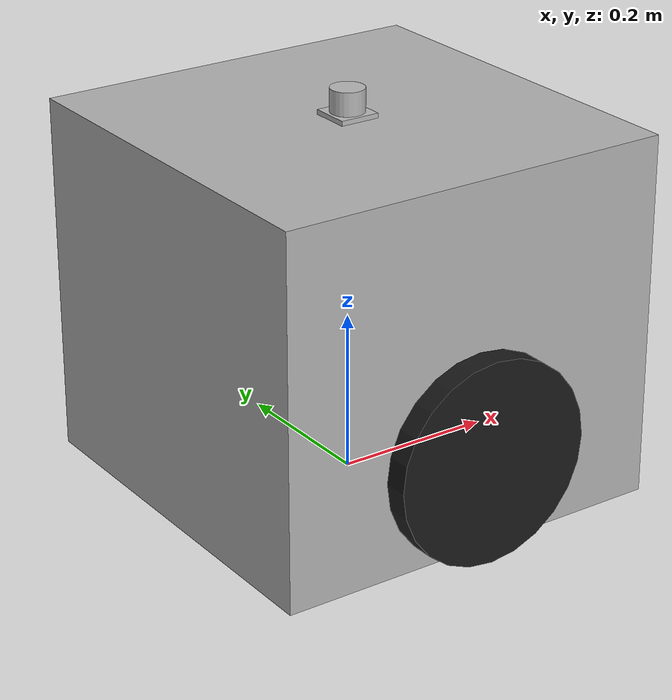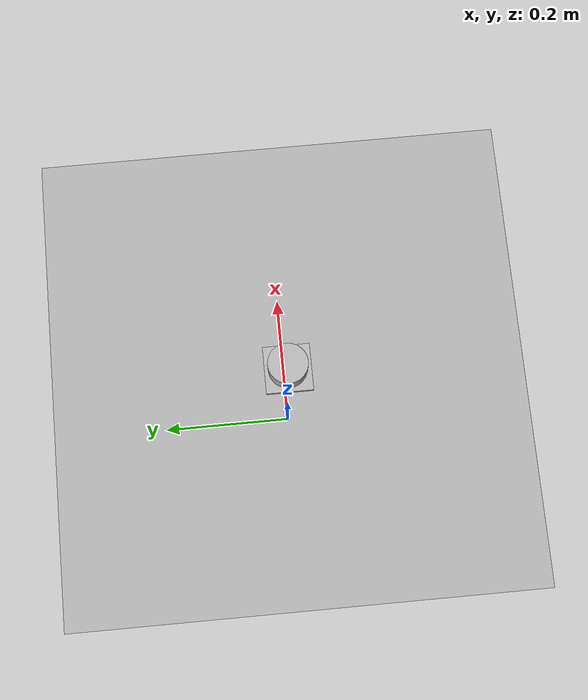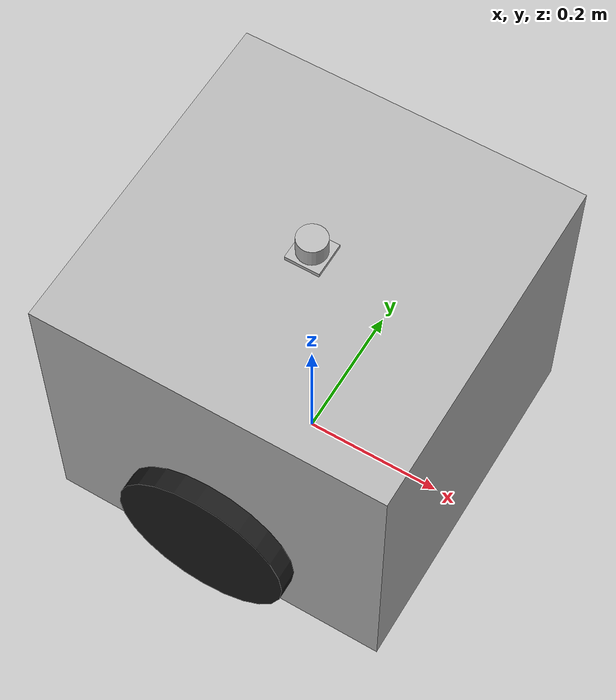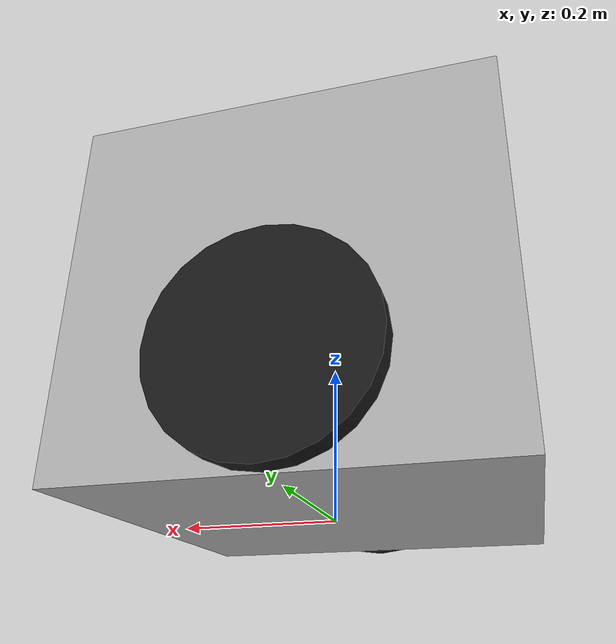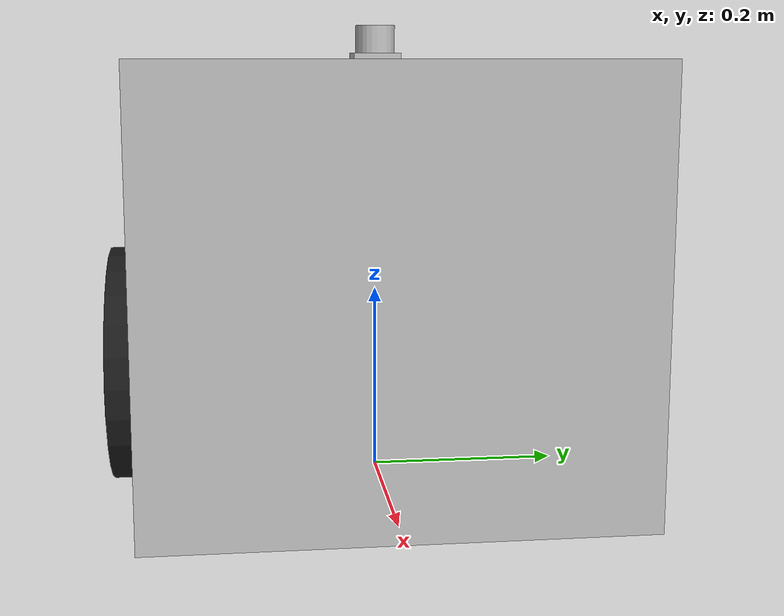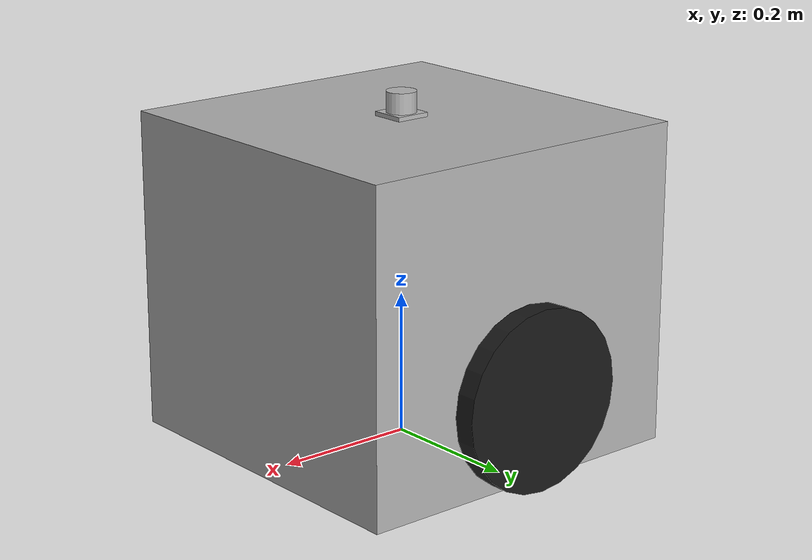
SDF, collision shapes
<?xml version='1.0'?>
<sdf version='1.4'>

<!--
                                                      SHELFINO MODEL
-->
  <model name="shelfino">

<!--
                                                      BODY OF SHELFINO
-->
    <link name='base_link'>
      <inertial>
        <mass>20</mass>
        <inertia>
          <ixx>1.0</ixx><ixy>0.0</ixy><ixz>0.0</ixz><iyy>1.0</iyy><iyz>0.0</iyz><izz>1.0</izz>
        </inertia>
      </inertial>

      <visual name='body_visual'>
        <pose>0 0 0.25 0 0 0</pose>
        <geometry>
          <box>
            <size>0.5 0.5 0.4</size>
          </box>
        </geometry>
        <material>
          <diffuse>0.7 0.7 0.7 1</diffuse>
          <ambient>0.7 0.7 0.7 1</ambient>
        </material>
      </visual>

      <visual name='front_caster_visual'>
        <pose>-0.2 0 0.05 0 0 0</pose>
        <geometry>
          <sphere>
            <radius> 0.05 </radius>
          </sphere>
        </geometry>
      </visual>

      <visual name='back_caster_visual'>
        <pose>0.2 0 0.05 0 0 0</pose>
        <geometry>
          <sphere>
            <radius> 0.05 </radius>
          </sphere>
        </geometry>
      </visual>

      <collision name='collision'>
        <pose>0 0 0.225 0 0 0</pose>
        <geometry>
          <box>
            <size>0.5 0.5 0.45</size>
          </box>
        </geometry>
        <surface>
          <friction>
            <ode>
              <mu>0.0</mu>
              <mu2>0.0</mu2>
            </ode>
          </friction>
        </surface>
      </collision>
    </link>

<!--
                                                      LEFT WHEEL JOINT
-->
    <joint name="wheel_left_joint" type="revolute">
      <parent>base_link</parent>
      <child>left_wheel</child>
      <pose>0 0 0 0 0 0</pose>
      <axis>
        <xyz>0 1 0</xyz>
      </axis>
    </joint>

<!--
                                                      LEFT WHEEL
-->
    <link name="left_wheel">
      <pose>0 0.27 0.125 0 1.5707 1.5707</pose>
      <visual name="visual">
        <geometry>
          <cylinder>
            <radius> 0.125 </radius>
            <length> 0.03 </length>
          </cylinder>
        </geometry>
        <material>
          <diffuse>0.1 0.1 0.1 1</diffuse>
          <ambient>0.1 0.1 0.1 1</ambient>
        </material>
      </visual>

      <collision name="collision">
        <geometry>
          <cylinder>
            <radius> 0.125 </radius>
            <length> 0.03 </length>
          </cylinder>
        </geometry>
        <surface>
          <friction>
            <ode>
              <mu>1000.0</mu>
              <mu2>1000.0</mu2>
              <slip1>0.0</slip1>
              <slip2>0.0</slip2>
            </ode>
          </friction>
        </surface>
      </collision>
    </link>

<!--
                                                      RIGHT WHEEL JOINT
-->
    <joint name="wheel_right_joint" type="revolute">
      <parent>base_link</parent>
      <child>right_wheel</child>
      <pose>0 0 0 0 0 0</pose>
      <axis>
        <xyz>0 1 0</xyz>
      </axis>
    </joint>

<!--
                                                      RIGHT WHEEL
-->
    <link name="right_wheel">
      <pose>0 -0.27 0.125 0 1.5707 1.5707</pose>
      <visual name="visual">
        <geometry>
          <cylinder>
            <radius> 0.125 </radius>
            <length> 0.03 </length>
          </cylinder>
        </geometry>
        <material>
          <diffuse>0.1 0.1 0.1 1</diffuse>
          <ambient>0.1 0.1 0.1 1</ambient>
        </material>
      </visual>

      <collision name="collision">
        <geometry>
          <cylinder>
            <radius> 0.125 </radius>
            <length> 0.03 </length>
          </cylinder>
        </geometry>
        <surface>
          <friction>
            <ode>
              <mu>1000.0</mu>
              <mu2>1000.0</mu2>
              <slip1>0.0</slip1>
              <slip2>0.0</slip2>
            </ode>
          </friction>
        </surface>
      </collision>
    </link>

<!--
                                                      LIDAR FIXED JOINT
-->
    <joint name="lidar2d_joint" type="fixed">
      <parent>base_link</parent>
      <child>lidar2d::lidar_link</child>
      <pose>0 0 0 0 0 0</pose>
    </joint>

<!--
                                                      LIDAR
-->
    <include>
      <uri>model://lidar2d</uri>
      <pose>0 0 0.45 0 0 0</pose>
    </include>

<!--
                                                      DIFFERENTIAL DRIVE CONTROLLER
-->
    <plugin name="differential_drive_controller" filename="libgazebo_ros_diff_drive.so">

      <ros>
        <!-- Set namespace -->
      </ros>

      <update_rate>30</update_rate>

      <!-- wheels -->
      <left_joint>wheel_left_joint</left_joint>
      <right_joint>wheel_right_joint</right_joint>

      <!-- kinematics -->
      <wheel_separation>0.54</wheel_separation>
      <wheel_diameter>0.25</wheel_diameter>

      <!-- limits -->
      <max_wheel_torque>20</max_wheel_torque>
      <max_wheel_acceleration>1.0</max_wheel_acceleration>

      <command_topic>cmd_vel</command_topic>

      <!-- output -->
      <publish_odom>true</publish_odom>
      <publish_odom_tf>true</publish_odom_tf>
      <publish_wheel_tf>false</publish_wheel_tf>

      <odometry_frame>gazebo/odom</odometry_frame>
      <robot_base_frame>gazebo/base_link</robot_base_frame>

    </plugin>

<!--
                                                      JOINT STATE PUBLISHER
-->
    <plugin name="joint_state" filename="libgazebo_ros_joint_state_publisher.so">
      <ros>
        <namespace>gazebo</namespace>
        <remapping>~/out:=joint_states</remapping>
      </ros>
      <update_rate>30</update_rate>
      <joint_name>wheel_left_joint</joint_name>
      <joint_name>wheel_right_joint</joint_name>
    </plugin>

  </model>
</sdf>

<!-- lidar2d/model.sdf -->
<sdf version='1.5'>
  <model name="lidar2d">
    <pose>0 0 0.035 0 0 0</pose>
    <link name="lidar_link">
      <inertial>
        <mass>0.1</mass>
      </inertial>
      <visual name="visual">
        <geometry>
          <mesh>
            <uri>model://lidar2d/meshes/hokuyo.dae</uri>
          </mesh>
        </geometry>
      </visual>
      <collision name="collision-base">
        <pose>0 0 -0.0145 0 0 0</pose>
        <geometry>
          <box>
            <size>0.05 0.05 0.041</size>
          </box>
        </geometry>
      </collision>
      <collision name="collision-top">
        <pose>0 0 0.0205 0 0 0</pose>
        <geometry>
          <cylinder>
            <radius>0.021</radius>
            <length>0.029</length>
          </cylinder>
        </geometry>
      </collision>
      <sensor name="laser" type="ray">
        <always_on>true</always_on>
        <visualize>false</visualize>
        <update_rate>30</update_rate>
        <pose>0 0 0.2 0 0 0</pose>
        <ray>
          <scan>
            <horizontal>
              <samples>360</samples>
              <resolution>1</resolution>
              <min_angle>0</min_angle>
              <max_angle>6.28318530718</max_angle>
            </horizontal>
          </scan>
          <range>
            <min>0.15</min>
            <max>12.</max>
            <resolution>0.01</resolution>
          </range>
          <noise>
            <type>gaussian</type>
            <mean>0.0</mean>
            <stddev>0.02</stddev>
          </noise>
        </ray>
        <plugin name="laser" filename="libgazebo_ros_ray_sensor.so">
          <ros>
            <remapping>~/out:=scan</remapping>
          </ros>
          <output_type>sensor_msgs/LaserScan</output_type>
          <frame_name>base_laser</frame_name>
        </plugin>
      </sensor>
    </link>
  </model>
</sdf>
